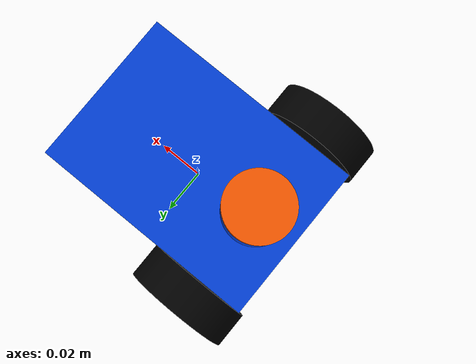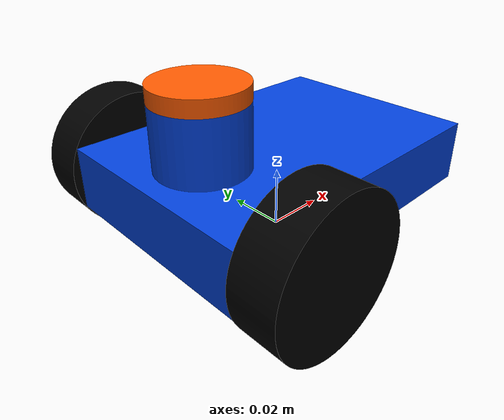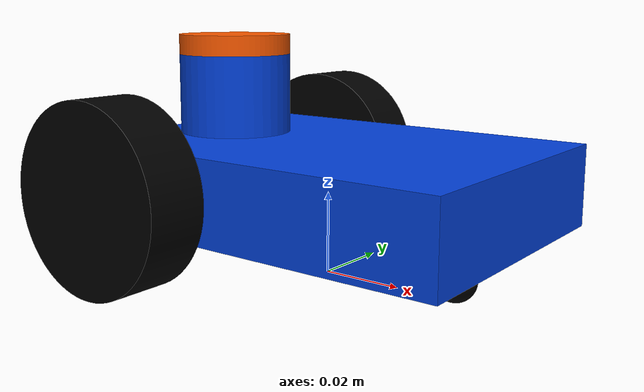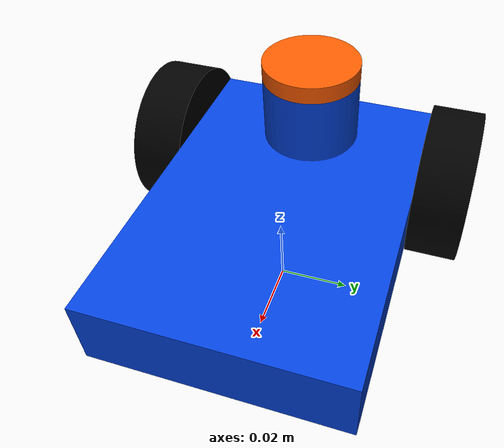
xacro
<?xml version="1.0" ?>
<robot name="mapbot" xmlns:xacro="http://www.ros.org/wiki/xacro">

<xacro:include filename="$(find mapbot_description)/urdf/materials.xacro" />
<xacro:include filename="$(find mapbot_description)/urdf/mapbot.trans" />
<xacro:include filename="$(find mapbot_description)/urdf/mapbot.gazebo" />
<link name="base_link">
  <inertial>
    <origin rpy="0 0 0" xyz="-0.002470997046653882 -1.4903277784204395e-17 0.024147337367533068"/>
    <mass value="1.197644825570603"/>
    <inertia ixx="0.00053" ixy="0.0" ixz="5.4e-05" iyy="0.001078" iyz="-0.0" izz="0.001456"/>
  </inertial>
  <visual>
    <origin rpy="0 0 0" xyz="0 0 0"/>
    <geometry>
      <mesh filename="package://mapbot_description/meshes/base_link.stl" scale="0.001 0.001 0.001"/>
    </geometry>
    <material name="blue"/>
  </visual>
  <collision>
    <origin rpy="0 0 0" xyz="0 0 0"/>
    <geometry>
      <mesh filename="package://mapbot_description/meshes/base_link.stl" scale="0.001 0.001 0.001"/>
    </geometry>
  </collision>
</link>

<link name="right_1">
  <inertial>
    <origin rpy="0 0 0" xyz="3.469446951953614e-17 -0.0075 -4.0866499042419013e-08"/>
    <mass value="0.1872732833236003"/>
    <inertia ixx="2.7e-05" ixy="-0.0" ixz="-0.0" iyy="4.7e-05" iyz="-0.0" izz="2.7e-05"/>
  </inertial>
  <visual>
    <origin rpy="0 0 0" xyz="0.03 0.035 -0.022386"/>
    <geometry>
      <mesh filename="package://mapbot_description/meshes/right_1.stl" scale="0.001 0.001 0.001"/>
    </geometry>
    <material name="black"/>
  </visual>
  <collision>
    <origin rpy="0 0 0" xyz="0.03 0.035 -0.022386"/>
    <geometry>
      <mesh filename="package://mapbot_description/meshes/right_1.stl" scale="0.001 0.001 0.001"/>
    </geometry>
  </collision>
</link>

<link name="left_1">
  <inertial>
    <origin rpy="0 0 0" xyz="3.469446951953614e-17 0.007499999999999972 -4.0866499052827354e-08"/>
    <mass value="0.1872732833236003"/>
    <inertia ixx="2.7e-05" ixy="0.0" ixz="0.0" iyy="4.7e-05" iyz="-0.0" izz="2.7e-05"/>
  </inertial>
  <visual>
    <origin rpy="0 0 0" xyz="0.03 -0.035 -0.022386"/>
    <geometry>
      <mesh filename="package://mapbot_description/meshes/left_1.stl" scale="0.001 0.001 0.001"/>
    </geometry>
    <material name="black"/>
  </visual>
  <collision>
    <origin rpy="0 0 0" xyz="0.03 -0.035 -0.022386"/>
    <geometry>
      <mesh filename="package://mapbot_description/meshes/left_1.stl" scale="0.001 0.001 0.001"/>
    </geometry>
  </collision>
</link>

<link name="lidar_1">
  <inertial>
    <origin rpy="0 0 0" xyz="-6.938893903907228e-18 0.0 0.0025000000000000022"/>
    <mass value="0.024661502330679867"/>
    <inertia ixx="1e-06" ixy="0.0" ixz="-0.0" iyy="1e-06" iyz="0.0" izz="2e-06"/>
  </inertial>
  <visual>
    <origin rpy="0 0 0" xyz="0.03 -0.0 -0.0525"/>
    <geometry>
      <mesh filename="package://mapbot_description/meshes/lidar_1.stl" scale="0.001 0.001 0.001"/>
    </geometry>
    <material name="orange"/>
  </visual>
  <collision>
    <origin rpy="0 0 0" xyz="0.03 -0.0 -0.0525"/>
    <geometry>
      <mesh filename="package://mapbot_description/meshes/lidar_1.stl" scale="0.001 0.001 0.001"/>
    </geometry>
  </collision>
</link>

<link name="castor_1">
  <inertial>
    <origin rpy="0 0 0" xyz="-7.239209232068333e-13 -6.524214731207409e-19 -0.005480769230769271"/>
    <mass value="0.0066791568812256"/>
    <inertia ixx="0.0" ixy="-0.0" ixz="0.0" iyy="0.0" iyz="-0.0" izz="0.0"/>
  </inertial>
  <visual>
    <origin rpy="0 0 0" xyz="-0.035 -0.0 -0.0125"/>
    <geometry>
      <mesh filename="package://mapbot_description/meshes/castor_1.stl" scale="0.001 0.001 0.001"/>
    </geometry>
    <material name="black"/>
  </visual>
  <collision>
    <origin rpy="0 0 0" xyz="-0.035 -0.0 -0.0125"/>
    <geometry>
      <mesh filename="package://mapbot_description/meshes/castor_1.stl" scale="0.001 0.001 0.001"/>
    </geometry>
  </collision>
</link>

<joint name="Rev5" type="continuous">
  <origin rpy="0 0 0" xyz="-0.03 -0.035 0.022386"/>
  <parent link="base_link"/>
  <child link="right_1"/>
  <axis xyz="0.0 1.0 0.0"/>
</joint>

<joint name="Rev6" type="continuous">
  <origin rpy="0 0 0" xyz="-0.03 0.035 0.022386"/>
  <parent link="base_link"/>
  <child link="left_1"/>
  <axis xyz="0.0 1.0 0.0"/>
</joint>

<joint name="Rigid7" type="fixed">
  <origin rpy="0 0 0" xyz="-0.03 0.0 0.0525"/>
  <parent link="base_link"/>
  <child link="lidar_1"/>
  <axis xyz="0.0 0.0 1.0"/>
</joint>

<joint name="Rigid8" type="fixed">
  <origin rpy="0 0 0" xyz="0.035 0.0 0.0125"/>
  <parent link="base_link"/>
  <child link="castor_1"/>
</joint>

</robot>

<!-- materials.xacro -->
<robot name="mapbot" xmlns:xacro="http://www.ros.org/wiki/xacro" >

<material name="silver">
  <color rgba="0.700 0.700 0.700 1.000"/>
</material>

  <material name="orange" >
    <color rgba="1.0 0.3568627450980392 0.0 1.0" />
  </material>

  <material name="blue" >
    <color rgba="0.011764705882352941 0.2627450980392157 0.8745098039215686 1.0" />
  </material>

  <material name="black" >
    <color rgba="0.0 0.0 0.0 1.0" />
  </material>

</robot>

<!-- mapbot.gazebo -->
<robot name="mapbot" xmlns:xacro="http://www.ros.org/wiki/xacro" >

<xacro:property name="body_color" value="Gazebo/Silver" />

<gazebo>
  <plugin filename="libgazebo_ros_control.so" name="control"/>
</gazebo>
<gazebo reference="base_link">
  <material>${body_color}</material>
  <mu1>0.2</mu1>
  <mu2>0.2</mu2>
  <selfCollide>true</selfCollide>
  <gravity>true</gravity>
</gazebo>

<gazebo reference="right_1">
  <material>${body_color}</material>
  <mu1>1500</mu1>
  <mu2>1500</mu2>
  <selfCollide>true</selfCollide>
</gazebo>

<gazebo reference="left_1">
  <material>${body_color}</material>
  <mu1>1500</mu1>
  <mu2>1500</mu2>
  <selfCollide>true</selfCollide>
</gazebo>

<gazebo reference="lidar_1">
  <material>${body_color}</material>
  <mu1>2500</mu1>
  <mu2>2500</mu2>
  <selfCollide>true</selfCollide>
</gazebo>

<gazebo reference="castor_1">
  <material>${body_color}</material>
  <mu1>0.2</mu1>
  <mu2>0.2</mu2>
  <selfCollide>true</selfCollide>
</gazebo>

<gazebo>
   <plugin name="differential_drive_controller" filename="libgazebo_ros_diff_drive.so">

    <!-- Plugin update rate in Hz -->
    <updateRate>10</updateRate>

    <!-- Name of left joint, defaults to `left_joint` -->
    <leftJoint>Rev6</leftJoint>

    <!-- Name of right joint, defaults to `right_joint` -->
    <rightJoint>Rev5</rightJoint>

    <!-- The distance from the center of one wheel to the other, in meters, defaults to 0.34 m -->
    <wheelSeparation>0.085</wheelSeparation>

    <!-- Diameter of the wheels, in meters, defaults to 0.15 m -->
    <wheelDiameter>0.045</wheelDiameter>

    <!-- Wheel acceleration, in rad/s^2, defaults to 0.0 rad/s^2 -->
    <wheelAcceleration>1.0</wheelAcceleration>

    <!-- Maximum torque which the wheels can produce, in Nm, defaults to 5 Nm -->
    <wheelTorque>20</wheelTorque>

    <!-- Topic to receive geometry_msgs/Twist message commands, defaults to `cmd_vel` -->
    <commandTopic>cmd_vel</commandTopic>

    <!-- Topic to publish nav_msgs/Odometry messages, defaults to `odom` -->
    <odometryTopic>odom</odometryTopic>

    <!-- Odometry frame, defaults to `odom` -->
    <odometryFrame>odom</odometryFrame>

    <!-- Robot frame to calculate odometry from, defaults to `base_footprint` -->
    <robotBaseFrame>base_link</robotBaseFrame>

    <!-- Odometry source, 0 for ENCODER, 1 for WORLD, defaults to WORLD -->
    <odometrySource>1</odometrySource>

    <!-- Set to true to publish transforms for the wheel links, defaults to false -->
    <publishWheelTF>true</publishWheelTF>

    <!-- Set to true to publish transforms for the odometry, defaults to true -->
    <publishOdom>true</publishOdom>

    <!-- Set to true to publish sensor_msgs/JointState on /joint_states for the wheel joints, defaults to false -->
    <publishWheelJointState>true</publishWheelJointState>

    <!-- Set to true to swap right and left wheels, defaults to true -->
    <legacyMode>false</legacyMode>
  </plugin>
</gazebo>

<gazebo reference="lidar_1">
    <sensor type="ray" name="lidar">
      <pose>0 0 0 0 0 0</pose>
      <visualize>true</visualize>
      <update_rate>10</update_rate>
      <ray>
        <scan>
          <horizontal>
            <samples>720</samples>
            <resolution>1</resolution>
            <min_angle>-3.14159</min_angle>
            <max_angle>3.14159</max_angle>
          </horizontal>
        </scan>
        <range>
          <min>0.10</min>
          <max>30.0</max>
          <resolution>0.01</resolution>
        </range>
        <noise>
          <type>gaussian</type>
          <mean>0.0</mean>
          <stddev>0.01</stddev>
        </noise>
      </ray>
      <plugin name="gazebo_ros_head_hokuyo_controller" filename="libgazebo_ros_laser.so">
        <topicName>/scan</topicName>
        <frameName>lidar_1</frameName>
      </plugin>
    </sensor>
  </gazebo>

</robot>
